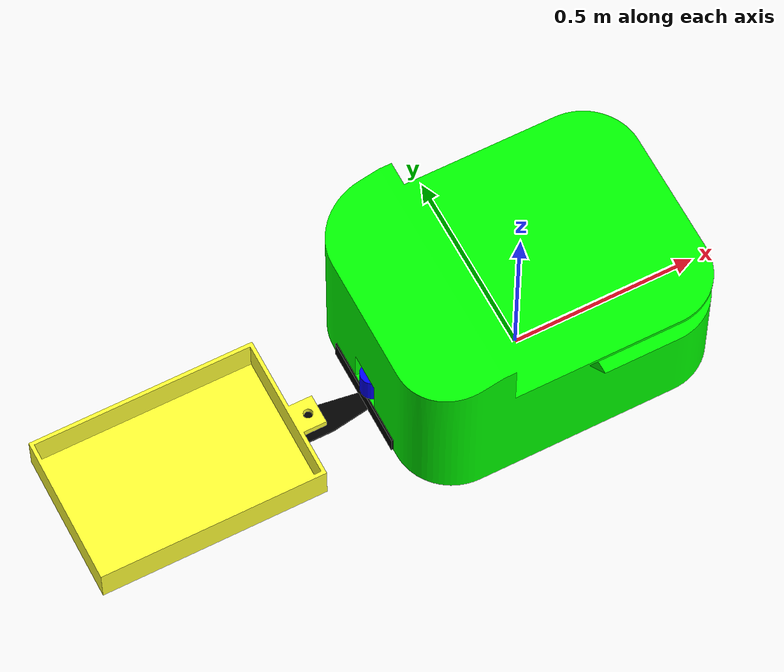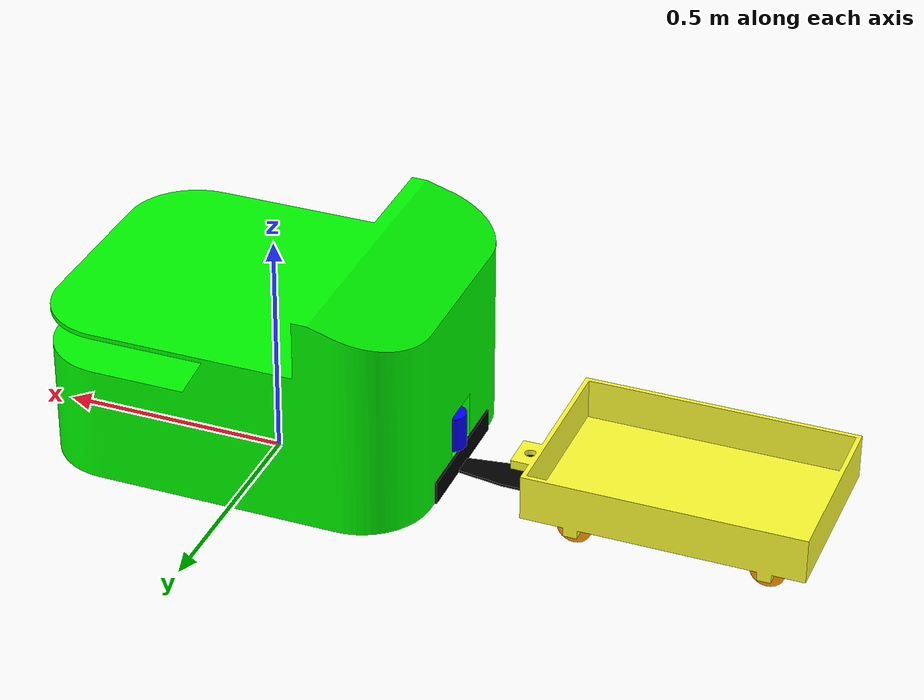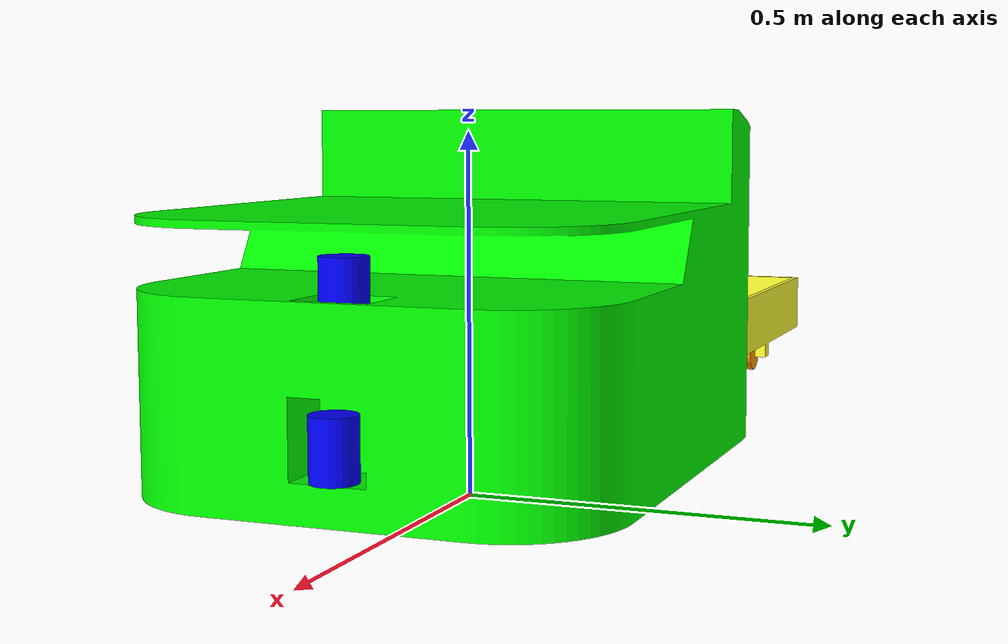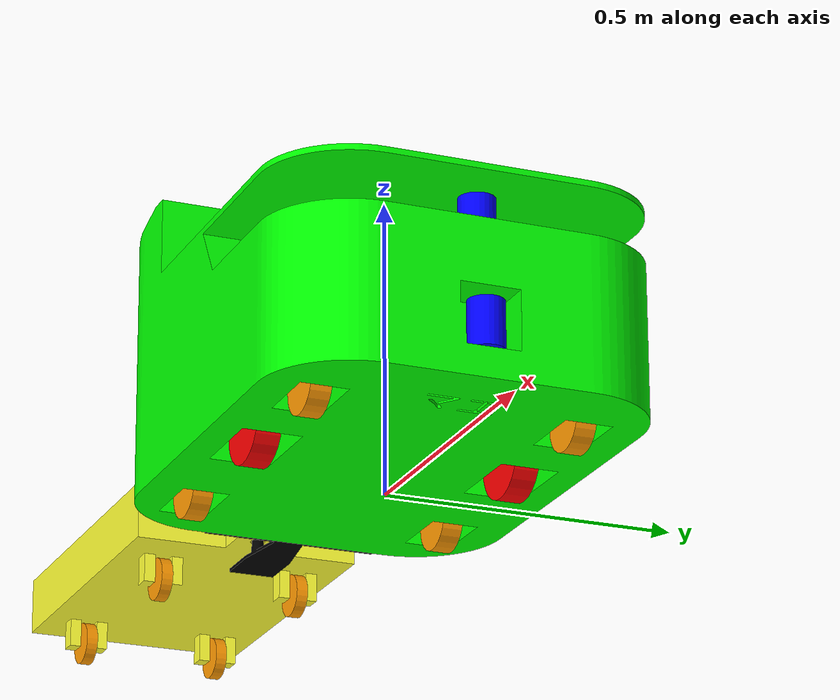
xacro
<?xml version="1.0"?>
<robot name="$(arg robot_name)" xmlns:xacro="http://ros.org/wiki/xacro">
  <xacro:include filename="$(find agv_description)/urdf/common.urdf.xacro"/>
  <xacro:include filename="$(find agv_description)/urdf/body.urdf.xacro"/>
  <xacro:include filename="$(find agv_description)/urdf/wheel.urdf.xacro"/>
  <xacro:include filename="$(find agv_description)/urdf/caster.urdf.xacro"/>
  <xacro:include filename="$(find agv_description)/urdf/lidar.urdf.xacro"/>
  <xacro:include filename="$(find agv_description)/urdf/imu.urdf.xacro"/>
  <xacro:include filename="$(find agv_description)/urdf/WYN_200.urdf.xacro"/>
  <xacro:include filename="$(find agv_description)/urdf/cart_600x400.urdf.xacro"/>
  <xacro:include filename="$(find agv_description)/urdf/coupler.urdf.xacro"/>
  <link name="base_link"/>
  <xacro:WYN_200 parent="base_link">
    <origin xyz="0 0 0.05" rpy="0 0 0"/>
  </xacro:WYN_200>
  <xacro:coupler parent="agv_body_link">
    <origin xyz="-0.419 0 0" rpy="0 0 0"/>
  </xacro:coupler>
  <xacro:cart_600x400 parent="coupler_body_link">
    <origin xyz="-0.155 0 0.05" rpy="0 0 0"/>
  </xacro:cart_600x400>
  <gazebo>
    <plugin name="gazebo_ros_control" filename="libgazebo_ros_control.so">
      <robotNamespace>$(arg robot_name)</robotNamespace>
    </plugin>
    <plugin name="joint_state_publisher" filename="libgazebo_ros_joint_state_publisher.so">
      <robotNamespace>$(arg robot_name)</robotNamespace>
      <jointName>
        agv_left_wheel_joint,
        agv_right_wheel_joint,
        agv_front_left_caster_joint,
        agv_front_right_caster_joint,
        agv_rear_left_caster_joint,
        agv_rear_right_caster_joint,
        cart_rev_joint,
        cart_front_left_caster_joint,
        cart_front_right_caster_joint,
        cart_rear_left_caster_joint,
        cart_rear_right_caster_joint
      </jointName>
    </plugin>
  </gazebo>
</robot>

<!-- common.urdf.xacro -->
<robot xmlns:xacro="http://ros.org/wiki/xacro">
  <material name="Red">
    <color rgba="1.0 0.0 0.0 1.0"/>
  </material>
  <material name="Green">
    <color rgba="0.0 1.0 0.0 1.0"/>
  </material>
  <material name="Blue">
    <color rgba="0.0 0.0 1.0 1.0"/>
  </material>
  <material name="Orange">
    <color rgba="1.0 0.6 0.0 1.0"/>
  </material>
  <material name="Grey">
    <color rgba="0.5 0.5 0.5 1.0"/>
  </material>
  <material name="Yellow">
    <color rgba="1.0 1.0 0.2 1.0"/>
  </material>
  <material name="Black">
    <color rgba="0.0 0.0 0.0 1.0"/>
  </material>
</robot>

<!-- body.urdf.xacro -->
<robot xmlns:xacro="http://ros.org/wiki/xacro">
  <xacro:macro name="body" params="prefix parent mesh color joint_type:='fixed' geometry_rpy:='0 0 0' *joint_origin **inertial">
    <xacro:property name="mesh_path" value="package://agv_description/meshes/${mesh}.stl"/>
    <link name="${prefix}_body_link">
      <visual>
        <geometry>
          <mesh filename="${mesh_path}"/>
        </geometry>
        <origin rpy="${geometry_rpy}"/>
        <material name="${color}"/>
      </visual>
      <collision>
        <geometry>
          <mesh filename="${mesh_path}"/>
        </geometry>
        <origin rpy="${geometry_rpy}"/>
      </collision>
      <inertial>
        <xacro:insert_block name="inertial"/>
      </inertial>
    </link>
    <joint name="${prefix}_body_joint" type="${joint_type}">
      <xacro:insert_block name="joint_origin"/>
      <axis xyz="0 0 1"/>
      <parent link="${parent}"/>
      <child link="${prefix}_body_link"/>
    </joint>
    <gazebo reference="${prefix}_body_link">
      <material>Gazebo/${color}</material>
      <mu1 value="0.01"/>
      <mu2 value="0.01"/>
      <selfCollide value="true"/>
    </gazebo>
  </xacro:macro>
</robot>

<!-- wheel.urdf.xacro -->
<robot xmlns:xacro="http://ros.org/wiki/xacro">
  <xacro:macro name="wheel" params="prefix parent radius width mass *joint_origin *joint_axis">
    <link name="${prefix}_wheel_link">
      <visual>
        <geometry>
          <cylinder radius="${radius}" length="${width}"/>
        </geometry>
        <material name="Red"/>
      </visual>
      <collision>
        <geometry>
          <cylinder radius="${radius}" length="${width}"/>
        </geometry>
      </collision>
      <inertial>
        <origin xyz="0 0 0"/>
        <mass value="${mass}"/>
        <inertia ixx="${mass*(radius**2/4+width**2/12)}" ixy="0" ixz="0" iyy="${mass*(radius**2/4+width**2/12)}" iyz="0" izz="${mass*radius**2/2}"/>
      </inertial>
    </link>
    <joint name="${prefix}_wheel_joint" type="continuous">
      <xacro:insert_block name="joint_origin"/>
      <xacro:insert_block name="joint_axis"/>
      <parent link="${parent}"/>
      <child link="${prefix}_wheel_link"/>
    </joint>
    <transmission name="${prefix}_wheel_trans">
      <type>transmission_interface/SimpleTransmission</type>
      <joint name="${prefix}_wheel_joint">
        <hardwareInterface>hardware_interface/VelocityJointInterface</hardwareInterface>
      </joint>
      <actuator name="${prefix}_wheel_motor">
        <hardwareInterface>hardware_interface/VelocityJointInterface</hardwareInterface>
        <mechanicalReduction>1</mechanicalReduction>
      </actuator>
    </transmission>
    <gazebo reference="${prefix}_wheel_link">
      <material>Gazebo/Red</material>
      <mu1 value="1"/>
      <mu2 value="1"/>
      <kp value="1000000"/>
      <kd value="100000"/>
      <dampingFactor value="0.4"/>
    </gazebo>
  </xacro:macro>
</robot>

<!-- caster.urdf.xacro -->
<robot xmlns:xacro="http://ros.org/wiki/xacro">
  <xacro:macro name="caster" params="prefix parent radius width mass *joint_origin *joint_axis">
    <link name="${prefix}_caster_link">
      <visual>
        <geometry>
          <cylinder radius="${radius}" length="${width}"/>
        </geometry>
        <material name="Orange"/>
      </visual>
      <collision>
        <geometry>
          <cylinder radius="${radius}" length="${width}"/>
        </geometry>
      </collision>
      <inertial>
        <origin xyz="0 0 0"/>
        <mass value="${mass}"/>
        <inertia ixx="${mass*(radius**2/4+width**2/12)}" ixy="0" ixz="0" iyy="${mass*(radius**2/4+width**2/12)}" iyz="0" izz="${mass*radius**2/2}"/>
      </inertial>
    </link>
    <joint name="${prefix}_caster_joint" type="continuous">
      <xacro:insert_block name="joint_origin"/>
      <xacro:insert_block name="joint_axis"/>
      <parent link="${parent}"/>
      <child link="${prefix}_caster_link"/>
    </joint>
    <gazebo reference="${prefix}_caster_link">
      <material>Gazebo/Orange</material>
      <mu1 value="0.5"/>
      <mu2 value="0.5"/>
      <kp value="1000000"/>
      <kd value="100000"/>
      <dampingFactor value="0.1"/>
    </gazebo>
  </xacro:macro>
</robot>

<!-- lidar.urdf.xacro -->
<robot xmlns:xacro="http://ros.org/wiki/xacro">
  <xacro:macro name="lidar" params="prefix parent view_angle min_range max_range visualize:='false' *joint_origin">
    <link name="${prefix}_lidar_link">
      <visual>
        <geometry>
          <cylinder radius="0.03" length="0.08"/>
        </geometry>
        <material name="Blue"/>
      </visual>
      <inertial>
        <origin xyz="0 0 0"/>
        <mass value="0.2"/>
        <inertia ixx="0.00038" ixy="0" ixz="0" iyy="0.00038" iyz="0" izz="0.00023"/>
      </inertial>
    </link>
    <joint name="${prefix}_lidar_joint" type="fixed">
      <xacro:insert_block name="joint_origin"/>
      <parent link="${parent}"/>
      <child link="${prefix}_lidar_link"/>
    </joint>
    <gazebo reference="${prefix}_lidar_link">
      <material>Gazebo/Blue</material>
      <sensor type="ray" name="${prefix}_lidar">
        <pose>0 0 0 0 0 0</pose>
        <visualize>${visualize}</visualize>
        <update_rate>10</update_rate>
        <ray>
          <scan>
            <horizontal>
              <samples>300</samples>
              <resolution>1</resolution>
              <min_angle>${radians(-view_angle/2)}</min_angle>
              <max_angle>${radians(view_angle/2)}</max_angle>
            </horizontal>
          </scan>
          <range>
            <min>${min_range}</min>
            <max>${max_range}</max>
            <resolution>0.01</resolution>
          </range>
        </ray>
        <plugin name="gazebo_ros_lidar_controller" filename="libgazebo_ros_laser.so">
          <topicName>/$(arg robot_name)/${prefix}_lidar/scan</topicName>
          <frameName>$(arg robot_name)/${prefix}_lidar_link</frameName>
        </plugin>
      </sensor>
    </gazebo>
  </xacro:macro>
</robot>

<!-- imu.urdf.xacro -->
<robot xmlns:xacro="http://ros.org/wiki/xacro">
  <xacro:macro name="imu" params="parent *joint_origin">
    <link name="imu_link"/>
    <joint name="imu_joint" type="fixed">
      <xacro:insert_block name="joint_origin"/>
      <parent link="${parent}"/>
      <child link="imu_link"/>
    </joint>
    <gazebo reference="imu_link">
      <gravity>true</gravity>
      <sensor name="imu_sensor" type="imu">
        <always_on>true</always_on>
        <update_rate>100</update_rate>
        <visualize>true</visualize>
        <topic>__default_topic__</topic>
        <pose>0 0 0 0 0 0</pose>
        <plugin name="gazebo_ros_imu_sensor" filename="libgazebo_ros_imu_sensor.so">
          <topicName>imu/data</topicName>
          <bodyName>$(arg robot_name)/imu_link</bodyName>
          <frameName>$(arg robot_name)/imu_link</frameName>
          <updateRateHZ>10.0</updateRateHZ>
          <gaussianNoise>0</gaussianNoise>
          <xyzOffset>0 0 0</xyzOffset>
          <rpyOffset>0 0 0</rpyOffset>
        </plugin>
      </sensor>
    </gazebo>
  </xacro:macro>
</robot>

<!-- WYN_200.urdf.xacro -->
<robot xmlns:xacro="http://ros.org/wiki/xacro">
  <xacro:macro name="WYN_200" params="parent *joint_origin">
    <xacro:body prefix="agv" parent="${parent}" mesh="WYN_200" color="Green">
      <xacro:insert_block name="joint_origin"/>
      <inertial>
        <origin xyz="0.00965 0 0.202"/>
        <mass value="180"/>
        <inertia ixx="1.17e+1" ixy="-1.25e-4" ixz="3.60e-1" iyy="1.62e+1" iyz="1.07e-4" izz="2.00e+1"/>
      </inertial>
    </xacro:body>
    <xacro:wheel prefix="agv_left" parent="agv_body_link" radius="0.065" width="0.042" mass="0.78">
      <origin xyz="0 0.22 0.035" rpy="${radians(-90)} 0 0"/>
      <axis xyz="0 0 1"/>
    </xacro:wheel>
    <xacro:wheel prefix="agv_right" parent="agv_body_link" radius="0.065" width="0.042" mass="0.78">
      <origin xyz="0 -0.22 0.035" rpy="${radians(-90)} 0 0"/>
      <axis xyz="0 0 1"/>
    </xacro:wheel>
    <xacro:caster prefix="agv_front_left" parent="agv_body_link" radius="0.05" width="0.035" mass="0.38">
      <origin xyz="0.235 0.22 0.022" rpy="${radians(-90)} 0 0"/>
      <axis xyz="0 0 1"/>
    </xacro:caster>
    <xacro:caster prefix="agv_front_right" parent="agv_body_link" radius="0.05" width="0.035" mass="0.38">
      <origin xyz="0.235 -0.22 0.022" rpy="${radians(-90)} 0 0"/>
      <axis xyz="0 0 1"/>
    </xacro:caster>
    <xacro:caster prefix="agv_rear_left" parent="agv_body_link" radius="0.05" width="0.035" mass="0.38">
      <origin xyz="-0.285 0.22 0.022" rpy="${radians(-90)} 0 0"/>
      <axis xyz="0 0 1"/>
    </xacro:caster>
    <xacro:caster prefix="agv_rear_right" parent="agv_body_link" radius="0.05" width="0.035" mass="0.38">
      <origin xyz="-0.285 -0.22 0.022" rpy="${radians(-90)} 0 0"/>
      <axis xyz="0 0 1"/>
    </xacro:caster>
    <xacro:lidar prefix="slam" parent="agv_body_link" view_angle="265" min_range="0.1" max_range="30">
      <origin xyz="0.37 0 0.27" rpy="0 0 0"/>
    </xacro:lidar>
    <xacro:lidar prefix="front" parent="agv_body_link" view_angle="135" min_range="0.1" max_range="30">
      <origin xyz="0.40 0 0.09" rpy="0 0 0"/>
    </xacro:lidar>
    <xacro:lidar prefix="rear" parent="agv_body_link" view_angle="180" min_range="0.01" max_range="30" visualize="false">
      <origin xyz="-0.40 0 0.09" rpy="0 0 ${radians(-180)}"/>
    </xacro:lidar>
    <xacro:imu parent="agv_body_link">
      <origin xyz="0 0 0" rpy="0 0 0"/>
    </xacro:imu>
  </xacro:macro>
</robot>

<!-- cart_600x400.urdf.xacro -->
<robot xmlns:xacro="http://ros.org/wiki/xacro">
  <xacro:macro name="cart_600x400" params="parent *joint_origin">
    <link name="cart_rev_link"/>
    <joint name="cart_rev_joint" type="revolute">
      <xacro:insert_block name="joint_origin"/>
      <axis xyz="0 0 1"/>
      <parent link="${parent}"/>
      <child link="cart_rev_link"/>
      <limit lower="${radians(-60)}" upper="${radians(60)}" effort="0" velocity="0"/>
    </joint>
    <xacro:body prefix="cart" parent="cart_rev_link" mesh="cart_600x400_center" color="Yellow">
      <origin xyz="-0.35 0 0" rpy="0 0 0"/>
      <inertial>
        <origin xyz="-0.341 0 0.0230"/>
        <mass value="35.5"/>
        <inertia ixx="7.04e-1" ixy="6.83e-16" ixz="4.10e-3" iyy="1.50e+0" iyz="2.35e-16" izz="2.14e+0"/>
      </inertial>
    </xacro:body>
    <xacro:caster prefix="cart_front_left" parent="cart_body_link" radius="0.0375" width="0.02" mass="0.30">
      <origin xyz="-0.205 -0.125 -0.04" rpy="${radians(-90)} 0 0"/>
      <axis xyz="0 0 1"/>
    </xacro:caster>
    <xacro:caster prefix="cart_front_right" parent="cart_body_link" radius="0.0375" width="0.02" mass="0.30">
      <origin xyz="-0.205 0.125 -0.04" rpy="${radians(-90)} 0 0"/>
      <axis xyz="0 0 1"/>
    </xacro:caster>
    <xacro:caster prefix="cart_rear_left" parent="cart_body_link" radius="0.0375" width="0.02" mass="0.30">
      <origin xyz="0.205 -0.125 -0.04" rpy="${radians(-90)} 0 0"/>
      <axis xyz="0 0 1"/>
    </xacro:caster>
    <xacro:caster prefix="cart_rear_right" parent="cart_body_link" radius="0.0375" width="0.02" mass="0.30">
      <origin xyz="0.205 0.125 -0.04" rpy="${radians(-90)} 0 0"/>
      <axis xyz="0 0 1"/>
    </xacro:caster>
  </xacro:macro>
</robot>

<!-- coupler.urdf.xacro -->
<robot xmlns:xacro="http://ros.org/wiki/xacro">
  <xacro:macro name="coupler" params="parent *joint_origin">
    <xacro:body prefix="coupler" parent="${parent}" mesh="WYN_200_coupler" color="Black">
      <xacro:insert_block name="joint_origin"/>
      <inertial>
        <origin xyz="-0.0601 0 0.0166"/>
        <mass value="1.23"/>
        <inertia ixx="4.98e-3" ixy="-1.35e-14" ixz="-3.76e-4" iyy="5.67e-3" iyz="2.27e-15" izz="9.98e-3"/>
      </inertial>
    </xacro:body>
  </xacro:macro>
</robot>
